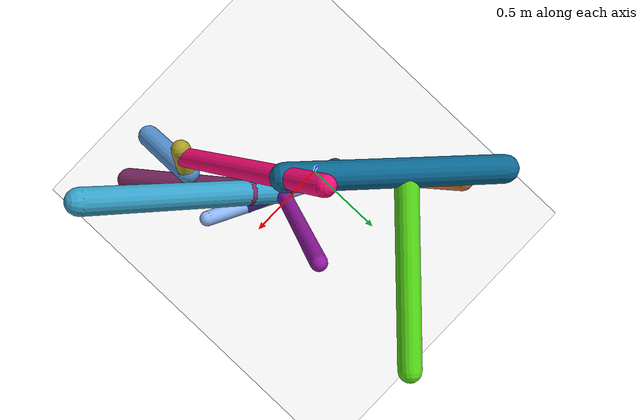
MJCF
<mujoco model="morphology">
  <option timestep="0.01"/>
  <default>
    <default class="/"/>
    <default class="0/"/>
    <default class="0/1/"/>
    <default class="0/1/2/"/>
    <default class="0/1/2/3/"/>
    <default class="0/1/2/3/4/"/>
    <default class="0/1/2/3/4/5/"/>
    <default class="0/1/2/3/4/5/6/"/>
    <default class="0/1/2/3/4/5/6/7/"/>
    <default class="0/1/2/3/4/5/6/7/8/"/>
    <default class="0/1/2/3/4/5/6/7/8/9/"/>
    <default class="0/1/2/3/4/5/6/10/"/>
  </default>
  <asset>
    <texture name="texplane" type="2d" builtin="checker" rgb1="0.10000000000000001 0.20000000000000001 0.29999999999999999" rgb2="0.20000000000000001 0.29999999999999999 0.40000000000000002" width="300" height="300"/>
    <material name="MatPlane" class="/" texture="texplane" texrepeat="20 20" specular="1" shininess="1" reflectance="0.5"/>
  </asset>
  <worldbody>
    <light name="//unnamed_light_0" class="/" directional="true" pos="0 0 1.5" dir="0 0 -1.3" cutoff="100" exponent="1" diffuse="1 1 1" specular="0.10000000000000001 0.10000000000000001 0.10000000000000001"/>
    <geom name="ground" class="/" type="plane" size="15 15 0.5" material="MatPlane" rgba="1 1 1 1"/>
    <site name="body" class="/" size="9.9999999999999995e-07 9.9999999999999995e-07 9.9999999999999995e-07" pos="0 0 0.10000000000000001"/>
    <body pos="0 0 0.10000000000000001" name="0/">
      <freejoint name="0/"/>
      <geom name="0/geom" class="0/" type="capsule" contype="1" conaffinity="1" condim="3" size="0.058735483920764935" rgba="0.81599040825964653 0.45057264859829793 0.21707757660568994 1" friction="0.59999999999999998 0.10000000000000001 0.10000000000000001" fromto="0 0 0 -0.51042695196214272 0.65174259688787073 0.32627400586395017"/>
      <site name="0/end0" class="0/" size="0.0050000000000000001" pos="-0.51042695196214272 0.65174259688787073 0.32627400586395017"/>
      <site name="0/attach1" class="0/" size="9.9999999999999995e-07 9.9999999999999995e-07 9.9999999999999995e-07" pos="-0.11707366968268321 0.14948641958045328 0.074835576455600281"/>
      <body pos="-0.11707366968268321 0.14948641958045328 0.074835576455600281" name="0/1/">
        <joint name="0/1/joint/" class="0/" type="hinge" axis="0 1 0" limited="true" range="-30.682514907625524 30.682514907625524"/>
        <geom name="0/1/geom" class="0/1/" type="capsule" contype="1" conaffinity="1" condim="3" size="0.039497247991905959" rgba="0.5559195329618577 0.70963386685864138 0.95962074279275733 1" friction="0.59999999999999998 0.10000000000000001 0.10000000000000001" fromto="0 0 0 0.71698885656967803 -0.35799262521461767 0.64196436215964203"/>
        <site name="0/1/end1" class="0/1/" size="0.0050000000000000001" pos="0.71698885656967803 -0.35799262521461767 0.64196436215964203"/>
        <site name="0/1/attach2" class="0/1/" size="9.9999999999999995e-07 9.9999999999999995e-07 9.9999999999999995e-07" pos="0.53563565413053693 -0.26744294869261331 0.47958765035625911"/>
        <body pos="0.53563565413053693 -0.26744294869261331 0.47958765035625911" name="0/1/2/">
          <geom name="0/1/2/geom" class="0/1/2/" type="capsule" contype="1" conaffinity="1" condim="3" size="0.041392139724084002" rgba="0.34534934579548626 0.16968302502629207 0.64612474752694415 1" friction="0.59999999999999998 0.10000000000000001 0.10000000000000001" fromto="0 0 0 -0.44970543562075077 0.19813569237275641 0.25994652954988262"/>
          <site name="0/1/2/end2" class="0/1/2/" size="0.0050000000000000001" pos="-0.44970543562075077 0.19813569237275641 0.25994652954988262"/>
          <site name="0/1/2/attach3" class="0/1/2/" size="9.9999999999999995e-07 9.9999999999999995e-07 9.9999999999999995e-07" pos="-0.18098010783104113 0.079738015444047308 0.10461325841726576"/>
          <body pos="-0.18098010783104113 0.079738015444047308 0.10461325841726576" name="0/1/2/3/">
            <geom name="0/1/2/3/geom" class="0/1/2/3/" type="capsule" contype="1" conaffinity="1" condim="3" size="0.038459326872054403" rgba="0.5778862763281537 0.097428112765174046 0.6342066727313791 1" friction="0.59999999999999998 0.10000000000000001 0.10000000000000001" fromto="0 0 0 0.11926520005911156 0.35368222270359007 0.67007715285338643"/>
            <site name="0/1/2/3/end3" class="0/1/2/3/" size="0.0050000000000000001" pos="0.11926520005911156 0.35368222270359007 0.67007715285338643"/>
            <site name="0/1/2/3/attach4" class="0/1/2/3/" size="9.9999999999999995e-07 9.9999999999999995e-07 9.9999999999999995e-07" pos="0.00095160173280624315 0.002821985087189624 0.0053464596500330253"/>
            <body pos="0.00095160173280624315 0.002821985087189624 0.0053464596500330253" name="0/1/2/3/4/">
              <geom name="0/1/2/3/4/geom" class="0/1/2/3/4/" type="capsule" contype="1" conaffinity="1" condim="3" size="0.064958099382973089" rgba="0.21505582311460658 0.63770789948375906 0.79346255647165853 1" friction="0.59999999999999998 0.10000000000000001 0.10000000000000001" fromto="0 0 0 0.64284714196645854 -0.57741892034016495 0.60083876026985772"/>
              <site name="0/1/2/3/4/end4" class="0/1/2/3/4/" size="0.0050000000000000001" pos="0.64284714196645854 -0.57741892034016495 0.60083876026985772"/>
              <site name="0/1/2/3/4/attach5" class="0/1/2/3/4/" size="9.9999999999999995e-07 9.9999999999999995e-07 9.9999999999999995e-07" pos="0.11980281657330175 -0.1076094276282496 0.1119740154191983"/>
              <body pos="0.11980281657330175 -0.1076094276282496 0.1119740154191983" name="0/1/2/3/4/5/">
                <geom name="0/1/2/3/4/5/geom" class="0/1/2/3/4/5/" type="capsule" contype="1" conaffinity="1" condim="3" size="0.066639243617675953" rgba="0.51544740409954515 0.16476409699672934 0.40683991766067729 1" friction="0.59999999999999998 0.10000000000000001 0.10000000000000001" fromto="0 0 0 0.4245144701197312 -0.57357884873438314 -0.48654188042584534"/>
                <site name="0/1/2/3/4/5/end5" class="0/1/2/3/4/5/" size="0.0050000000000000001" pos="0.4245144701197312 -0.57357884873438314 -0.48654188042584534"/>
                <site name="0/1/2/3/4/5/attach6" class="0/1/2/3/4/5/" size="9.9999999999999995e-07 9.9999999999999995e-07 9.9999999999999995e-07" pos="0.1846622433516629 -0.24950470337673483 -0.21164394019038441"/>
                <body pos="0.1846622433516629 -0.24950470337673483 -0.21164394019038441" name="0/1/2/3/4/5/6/">
                  <joint name="0/1/2/3/4/5/6/joint/" class="0/1/2/3/4/5/" type="hinge" axis="0.8708645099052349 0.37483314689914071 0.31795458382165565" limited="true" range="-38.801063042946566 38.801063042946566"/>
                  <geom name="0/1/2/3/4/5/6/geom" class="0/1/2/3/4/5/6/" type="capsule" contype="1" conaffinity="1" condim="3" size="0.051338551200055718" rgba="0.67235953288602235 0.60662668653013774 0.15652533922551459 1" friction="0.59999999999999998 0.10000000000000001 0.10000000000000001" fromto="0 0 0 -0.10456042405342225 -0.14651827367411407 0.19374956595727433"/>
                  <site name="0/1/2/3/4/5/6/end6" class="0/1/2/3/4/5/6/" size="0.0050000000000000001" pos="-0.10456042405342225 -0.14651827367411407 0.19374956595727433"/>
                  <site name="0/1/2/3/4/5/6/attach7" class="0/1/2/3/4/5/6/" size="9.9999999999999995e-07 9.9999999999999995e-07 9.9999999999999995e-07" pos="-0.085556112371551502 -0.11988794039840119 0.15853473995582315"/>
                  <body pos="-0.085556112371551502 -0.11988794039840119 0.15853473995582315" name="0/1/2/3/4/5/6/7/">
                    <joint name="0/1/2/3/4/5/6/7/joint/" class="0/1/2/3/4/5/6/" type="hinge" axis="5.5511151231257827e-17 0.79761041282478562 0.60317296802283438" limited="true" range="-59.052964241065879 59.052964241065879"/>
                    <geom name="0/1/2/3/4/5/6/7/geom" class="0/1/2/3/4/5/6/7/" type="capsule" contype="1" conaffinity="1" condim="3" size="0.049724156936456605" rgba="0.97493731372717141 0.039271376556631377 0.46031888568003831 1" friction="0.59999999999999998 0.10000000000000001 0.10000000000000001" fromto="0 0 0 -0.34741885555887747 0.6204127512961366 0.73282204641176985"/>
                    <site name="0/1/2/3/4/5/6/7/end7" class="0/1/2/3/4/5/6/7/" size="0.0050000000000000001" pos="-0.34741885555887747 0.6204127512961366 0.73282204641176985"/>
                    <site name="0/1/2/3/4/5/6/7/attach8" class="0/1/2/3/4/5/6/7/" size="9.9999999999999995e-07 9.9999999999999995e-07 9.9999999999999995e-07" pos="-0.26368551364661152 0.47088363910261283 0.55620054763234017"/>
                    <body pos="-0.26368551364661152 0.47088363910261283 0.55620054763234017" name="0/1/2/3/4/5/6/7/8/">
                      <joint name="0/1/2/3/4/5/6/7/8/joint/" class="0/1/2/3/4/5/6/7/" type="hinge" axis="-0.94033839774825556 -0.21984447215106062 -0.25967692578445406" limited="true" range="-65.928022664915375 65.928022664915375"/>
                      <geom name="0/1/2/3/4/5/6/7/8/geom" class="0/1/2/3/4/5/6/7/8/" type="capsule" contype="1" conaffinity="1" condim="3" size="0.06688444752284084" rgba="0.041451094283318501 0.40709165804951153 0.57353229297798003 1" friction="0.59999999999999998 0.10000000000000001 0.10000000000000001" fromto="0 0 0 -0.71431250533215151 0.68235793856857652 -0.14969121060910173"/>
                      <site name="0/1/2/3/4/5/6/7/8/end8" class="0/1/2/3/4/5/6/7/8/" size="0.0050000000000000001" pos="-0.71431250533215151 0.68235793856857652 -0.14969121060910173"/>
                      <site name="0/1/2/3/4/5/6/7/8/attach9" class="0/1/2/3/4/5/6/7/8/" size="9.9999999999999995e-07 9.9999999999999995e-07 9.9999999999999995e-07" pos="-0.38848097811242532 0.37110239204707279 -0.081410009594073185"/>
                      <body pos="-0.38848097811242532 0.37110239204707279 -0.081410009594073185" name="0/1/2/3/4/5/6/7/8/9/">
                        <joint name="0/1/2/3/4/5/6/7/8/9/joint/" class="0/1/2/3/4/5/6/7/8/" type="hinge" axis="2.7755575615628914e-17 0.21427799438884318 0.97677271722785908" limited="true" range="-36.905510809660406 36.905510809660406"/>
                        <geom name="0/1/2/3/4/5/6/7/8/9/geom" class="0/1/2/3/4/5/6/7/8/9/" type="capsule" contype="1" conaffinity="1" condim="3" size="0.055085096118591109" rgba="0.33077483031201582 0.84441603171173152 0.082241995765874321 1" friction="0.59999999999999998 0.10000000000000001 0.10000000000000001" fromto="0 0 0 0.62510410701930885 0.62414583011844393 -0.037865455479372034"/>
                        <site name="0/1/2/3/4/5/6/7/8/9/end9" class="0/1/2/3/4/5/6/7/8/9/" size="0.0050000000000000001" pos="0.62510410701930885 0.62414583011844393 -0.037865455479372034"/>
                      </body>
                    </body>
                  </body>
                  <site name="0/1/2/3/4/5/6/attach10" class="0/1/2/3/4/5/6/" size="9.9999999999999995e-07 9.9999999999999995e-07 9.9999999999999995e-07" pos="-0.042931883080362547 -0.060159524518567077 0.079552409889795617"/>
                  <body pos="-0.042931883080362547 -0.060159524518567077 0.079552409889795617" name="0/1/2/3/4/5/6/10/">
                    <joint name="0/1/2/3/4/5/6/10/joint/" class="0/1/2/3/4/5/6/" type="hinge" axis="5.5511151231257827e-17 0.79761041282478562 0.60317296802283438" limited="true" range="-60.903291598618054 60.903291598618054"/>
                    <geom name="0/1/2/3/4/5/6/10/geom" class="0/1/2/3/4/5/6/10/" type="capsule" contype="1" conaffinity="1" condim="3" size="0.060089229363549143" rgba="0.33756258734996258 0.580239158613717 0.83289955071221455 1" friction="0.59999999999999998 0.10000000000000001 0.10000000000000001" fromto="0 0 0 0.020023875068724051 -0.33124131903162252 -0.25342142711227106"/>
                    <site name="0/1/2/3/4/5/6/10/end10" class="0/1/2/3/4/5/6/10/" size="0.0050000000000000001" pos="0.020023875068724051 -0.33124131903162252 -0.25342142711227106"/>
                  </body>
                </body>
              </body>
            </body>
          </body>
        </body>
      </body>
      <camera name="0/iso" class="0/" mode="trackcom" pos="-2.2999999999999998 -2.2999999999999998 1" xyaxes="0.45000000000000001 -0.45000000000000001 0 0.29999999999999999 0.14999999999999999 0.93999999999999995"/>
    </body>
  </worldbody>
  <actuator>
    <motor name="0/1/motor" class="0/1/" ctrllimited="true" ctrlrange="-1 1" gear="76" joint="0/1/joint/"/>
    <motor name="0/1/2/3/4/5/6/motor" class="0/1/2/3/4/5/6/" ctrllimited="true" ctrlrange="-1 1" gear="88" joint="0/1/2/3/4/5/6/joint/"/>
    <motor name="0/1/2/3/4/5/6/7/motor" class="0/1/2/3/4/5/6/7/" ctrllimited="true" ctrlrange="-1 1" gear="69" joint="0/1/2/3/4/5/6/7/joint/"/>
    <motor name="0/1/2/3/4/5/6/7/8/motor" class="0/1/2/3/4/5/6/7/8/" ctrllimited="true" ctrlrange="-1 1" gear="79" joint="0/1/2/3/4/5/6/7/8/joint/"/>
    <motor name="0/1/2/3/4/5/6/7/8/9/motor" class="0/1/2/3/4/5/6/7/8/9/" ctrllimited="true" ctrlrange="-1 1" gear="90" joint="0/1/2/3/4/5/6/7/8/9/joint/"/>
    <motor name="0/1/2/3/4/5/6/10/motor" class="0/1/2/3/4/5/6/10/" ctrllimited="true" ctrlrange="-1 1" gear="55" joint="0/1/2/3/4/5/6/10/joint/"/>
  </actuator>
  <sensor>
    <subtreelinvel name="velocity" body="0/"/>
  </sensor>
</mujoco>
